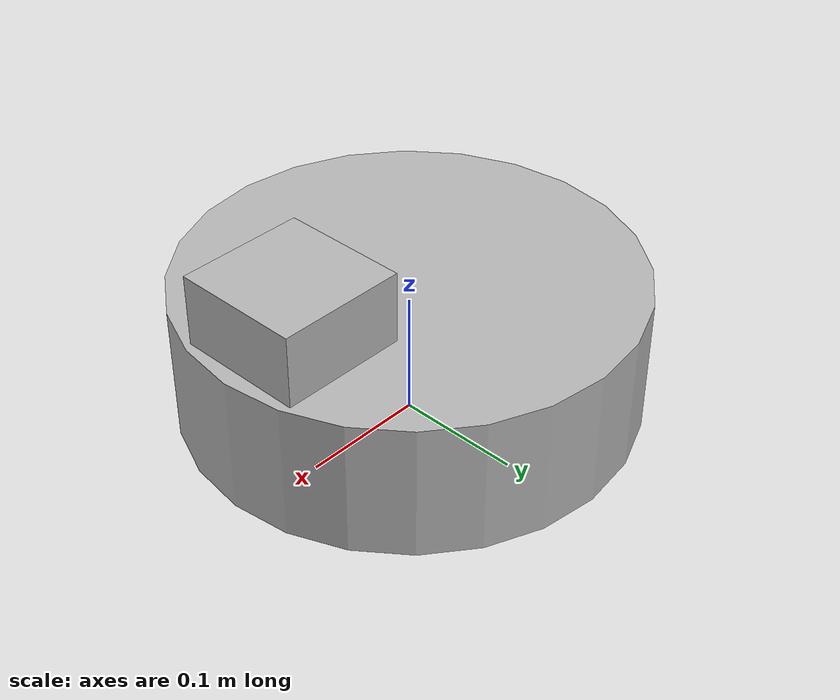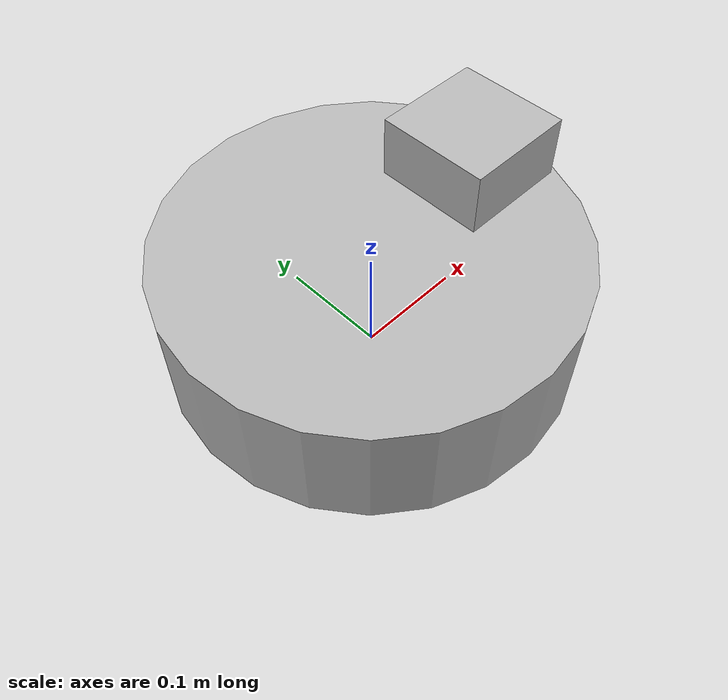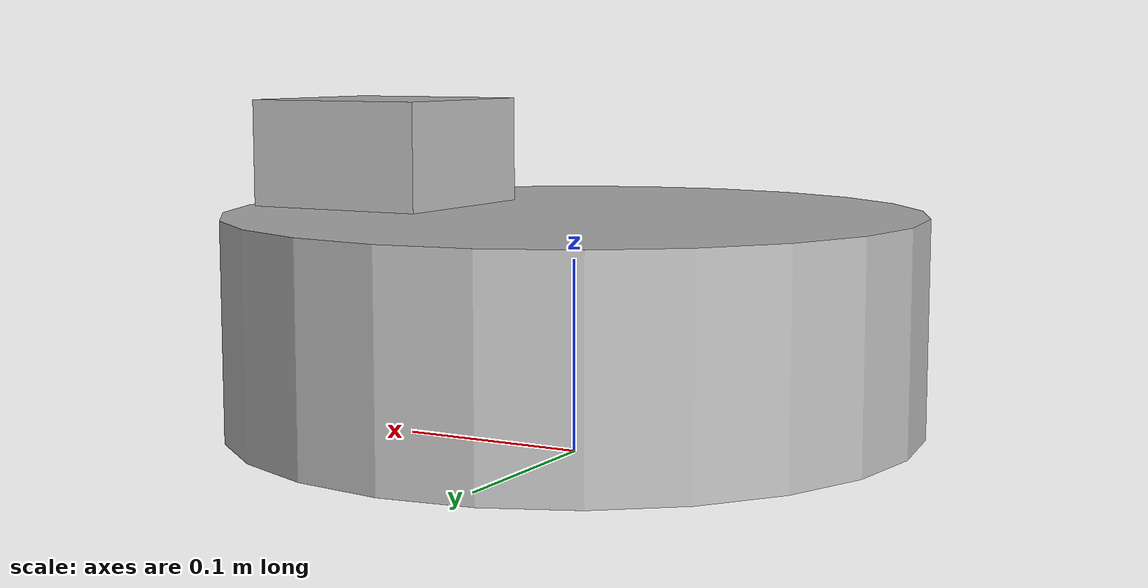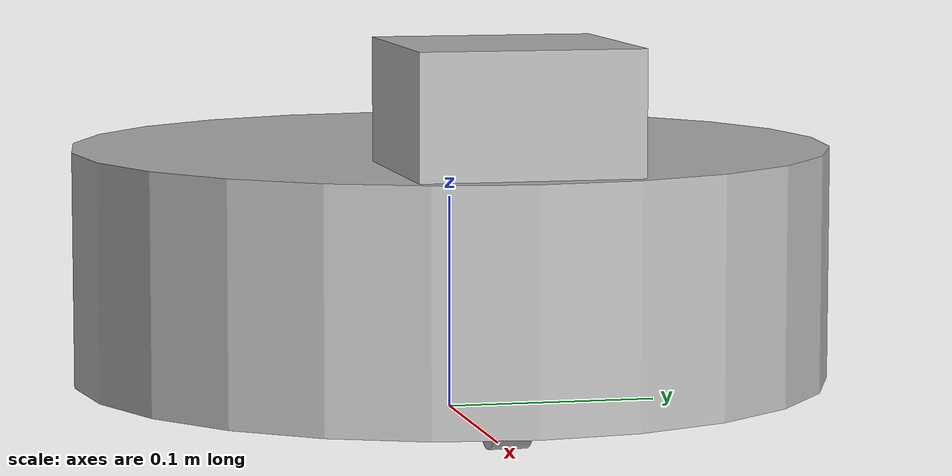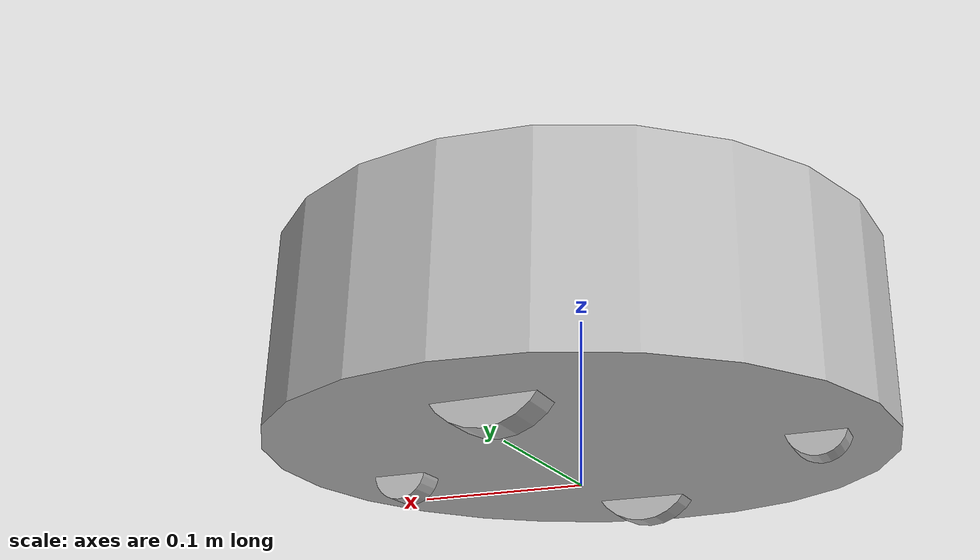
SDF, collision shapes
<sdf version='1.6'>
  <model name='kobuki_standalone'>
    <link name='base_footprint'>
      <pose frame=''>0 0 0 0 -0 0</pose>
      <inertial>
        <pose frame=''>0.009933 1.3e-05 0.010241 0 -0 0</pose>
        <mass>4.82131</mass>
        <inertia>
          <ixx>0.0424129</ixx>
          <ixy>-2.88798e-06</ixy>
          <ixz>2.94309e-06</ixz>
          <iyy>0.0426324</iyy>
          <iyz>-1.24986e-06</iyz>
          <izz>0.0762345</izz>
        </inertia>
      </inertial>
      <collision name='base_footprint_fixed_joint_lump__base_link_collision'>
        <pose frame=''>0 0 0.06969 0 -0 0</pose>
        <geometry>
          <cylinder>
            <length>0.10938</length>
            <radius>0.178</radius>
          </cylinder>
        </geometry>
        <surface>
          <contact>
            <ode/>
          </contact>
          <friction>
            <ode>
              <mu>0.3</mu>
              <mu2>0.3</mu2>
            </ode>
          </friction>
        </surface>
      </collision>
      <collision name='base_footprint_fixed_joint_lump__bumper_link_collision_1_collision_1'>
        <pose frame=''>0 0 0.06969 0 -0 0</pose>
        <geometry>
          <cylinder>
            <length>0.10938</length>
            <radius>0.178</radius>
          </cylinder>
        </geometry>
        <surface>
          <contact>
            <ode/>
          </contact>
          <friction>
            <ode/>
          </friction>
        </surface>
      </collision>
      <collision name='base_footprint_fixed_joint_lump__camera_link_collision_2'>
        <pose frame=''>0.067 0 0.1112 0 -0 0</pose>
        <geometry>
          <box>
            <size>0.012 0.132 0.02</size>
          </box>
        </geometry>
        <surface>
          <contact>
            <ode/>
          </contact>
          <friction>
            <ode/>
          </friction>
        </surface>
      </collision>
      <collision name='base_footprint_fixed_joint_lump__caster_back_link_collision_3'>
        <pose frame=''>-0.135 0 0.0192 -1.5708 0 0</pose>
        <geometry>
          <cylinder>
            <length>0.0176</length>
            <radius>0.017</radius>
          </cylinder>
        </geometry>
        <surface>
          <contact>
            <ode>
              <kp>1e+06</kp>
              <kd>100</kd>
              <max_vel>1</max_vel>
              <min_depth>0.001</min_depth>
            </ode>
          </contact>
          <friction>
            <ode>
              <mu>0</mu>
              <mu2>0</mu2>
            </ode>
          </friction>
        </surface>
      </collision>
      <collision name='base_footprint_fixed_joint_lump__caster_front_link_collision_4'>
        <pose frame=''>0.115 0 0.0172 -1.5708 0 0</pose>
        <geometry>
          <cylinder>
            <length>0.0176</length>
            <radius>0.017</radius>
          </cylinder>
        </geometry>
        <surface>
          <contact>
            <ode>
              <kp>1e+06</kp>
              <kd>100</kd>
              <max_vel>1</max_vel>
              <min_depth>0.001</min_depth>
            </ode>
          </contact>
          <friction>
            <ode>
              <mu>0</mu>
              <mu2>0</mu2>
            </ode>
          </friction>
        </surface>
      </collision>
      <collision name='base_footprint_fixed_joint_lump__base_laser_link_collision_5'>
        <pose frame=''>0.115 0 0.1302 0 -0 0</pose>
        <geometry>
          <box>
            <size>0.1 0.1 0.1</size>
          </box>
        </geometry>
        <surface>
          <contact>
            <ode/>
          </contact>
          <friction>
            <ode/>
          </friction>
        </surface>
      </collision>
      <visual name='base_footprint_fixed_joint_lump__base_link_visual'>
        <pose frame=''>0.001 0 0.06219 0 -0 0</pose>
        <geometry>
          <mesh>
            <scale>1 1 1</scale>
            <uri>model://rrt_exploration_tutorials/launch/includes/meshes/main_body.dae</uri>
          </mesh>
        </geometry>
        <material>
          <script>
            <uri>__default__</uri>
            <name>__default__</name>
          </script>
        </material>
      </visual>
      <visual name='base_footprint_fixed_joint_lump__bumper_link_visual_1'>
        <pose frame=''>0.001 0 0.06219 0 -0 0</pose>
        <geometry>
          <mesh>
            <scale>1 1 1</scale>
            <uri>model://rrt_exploration_tutorials/launch/includes/meshes/main_body.dae</uri>
          </mesh>
        </geometry>
        <material>
          <script>
            <uri>__default__</uri>
            <name>__default__</name>
          </script>
        </material>
      </visual>
      <visual name='base_footprint_fixed_joint_lump__camera_link_visual_2'>
        <pose frame=''>0.064 -0.065 0.1042 1.57 -0 1.57</pose>
        <geometry>
          <mesh>
            <scale>1 1 1</scale>
            <uri>model://rrt_exploration_tutorials/launch/includes/meshes/r200.dae</uri>
          </mesh>
        </geometry>
        <material>
          <script>
            <uri>__default__</uri>
            <name>__default__</name>
          </script>
        </material>
      </visual>
      <visual name='base_footprint_fixed_joint_lump__base_laser_link_visual_3'>
        <pose frame=''>0.115 0 0.1302 0 -0 0</pose>
        <geometry>
          <mesh>
            <scale>1 1 1</scale>
            <uri>model://rrt_exploration_tutorials/launch/includes/meshes/hokuyo.dae</uri>
          </mesh>
        </geometry>
        <material>
          <script>
            <uri>__default__</uri>
            <name>__default__</name>
          </script>
        </material>
      </visual>
      <velocity_decay/>
      <sensor name='bumpers' type='contact'>
        <always_on>1</always_on>
        <update_rate>50</update_rate>
        <visualize>1</visualize>
        <contact>
          <collision>base_footprint_collision_base_link_collision</collision>
          <topic>__default_topic__</topic>
        </contact>
        <pose frame=''>0 0 0.0102 0 -0 0</pose>
      </sensor>
      <velocity_decay/>
      <sensor name='bumpers' type='contact'>
        <always_on>1</always_on>
        <update_rate>50</update_rate>
        <visualize>1</visualize>
        <contact>
          <collision>base_footprint_fixed_joint_lump__bumper_link_collision_1</collision>
          <topic>__default_topic__</topic>
        </contact>
        <plugin name='gazebo_ros_bumper_controller' filename='libgazebo_ros_bumper.so'>
          <updateRate>50.0</updateRate>
          <bumperTopicName>bumper</bumperTopicName>
          <frameName>base_link</frameName>
        </plugin>
        <pose frame=''>0 0 0.0102 0 -0 0</pose>
      </sensor>
      <velocity_decay/>
      <sensor name='rgbcamera' type='camera'>
        <update_rate>30</update_rate>
        <camera name='head'>
          <horizontal_fov>1.4</horizontal_fov>
          <image>
            <width>642</width>
            <height>362</height>
            <format>R8G8B8</format>
          </image>
          <clip>
            <near>0.02</near>
            <far>300</far>
          </clip>
          <noise>
            <type>gaussian</type>
            <mean>0</mean>
            <stddev>0.007</stddev>
          </noise>
        </camera>
        <plugin name='camera_controller' filename='libgazebo_ros_camera.so'>
          <alwaysOn>true</alwaysOn>
          <updateRate>0.0</updateRate>
          <cameraName>rgbcamera</cameraName>
          <imageTopicName>image_raw</imageTopicName>
          <cameraInfoTopicName>camera_info</cameraInfoTopicName>
          <frameName>camera_link</frameName>
          <hackBaseline>0.07</hackBaseline>
          <distortionK1>0.0</distortionK1>
          <distortionK2>0.0</distortionK2>
          <distortionK3>0.0</distortionK3>
          <distortionT1>0.0</distortionT1>
          <distortionT2>0.0</distortionT2>
        </plugin>
        <pose frame=''>0.064 -0.065 0.1042 0 -0 0</pose>
      </sensor>
      <velocity_decay/>
      <velocity_decay/>
      <velocity_decay/>
      <sensor name='cliff_sensor_front' type='ray'>
        <always_on>1</always_on>
        <update_rate>50</update_rate>
        <visualize>1</visualize>
        <ray>
          <scan>
            <horizontal>
              <samples>50</samples>
              <resolution>1</resolution>
              <min_angle>-0.0436</min_angle>
              <max_angle>0.0436</max_angle>
            </horizontal>
          </scan>
          <range>
            <min>0.01</min>
            <max>0.15</max>
            <resolution>1</resolution>
          </range>
        </ray>
        <pose frame=''>0.156 0 0.0316 3.14159 1.57079 3.14159</pose>
      </sensor>
      <velocity_decay/>
      <sensor name='cliff_sensor_left' type='ray'>
        <always_on>1</always_on>
        <update_rate>50</update_rate>
        <visualize>1</visualize>
        <ray>
          <scan>
            <horizontal>
              <samples>50</samples>
              <resolution>1</resolution>
              <min_angle>-0.0436</min_angle>
              <max_angle>0.0436</max_angle>
            </horizontal>
          </scan>
          <range>
            <min>0.01</min>
            <max>0.15</max>
            <resolution>1</resolution>
          </range>
        </ray>
        <pose frame=''>0.08734 0.13601 0.0316 3.14159 1.57079 3.14159</pose>
      </sensor>
      <velocity_decay/>
      <sensor name='cliff_sensor_right' type='ray'>
        <always_on>1</always_on>
        <update_rate>50</update_rate>
        <visualize>1</visualize>
        <ray>
          <scan>
            <horizontal>
              <samples>50</samples>
              <resolution>1</resolution>
              <min_angle>-0.0436</min_angle>
              <max_angle>0.0436</max_angle>
            </horizontal>
          </scan>
          <range>
            <min>0.01</min>
            <max>0.15</max>
            <resolution>1</resolution>
          </range>
        </ray>
        <pose frame=''>0.085 -0.13601 0.0316 3.14159 1.57079 3.14159</pose>
      </sensor>
      <velocity_decay/>
      <sensor name='imu' type='imu'>
        <always_on>1</always_on>
        <update_rate>50</update_rate>
        <visualize>0</visualize>
        <imu>
          <angular_velocity>
            <x>
              <noise type='gaussian'>
                <mean>0</mean>
                <stddev>1.96e-06</stddev>
                <bias_mean>0</bias_mean>
                <bias_stddev>0</bias_stddev>
              </noise>
            </x>
            <y>
              <noise type='gaussian'>
                <mean>0</mean>
                <stddev>1.96e-06</stddev>
                <bias_mean>0</bias_mean>
                <bias_stddev>0</bias_stddev>
              </noise>
            </y>
            <z>
              <noise type='gaussian'>
                <mean>0</mean>
                <stddev>1.96e-06</stddev>
                <bias_mean>0</bias_mean>
                <bias_stddev>0</bias_stddev>
              </noise>
            </z>
          </angular_velocity>
          <linear_acceleration>
            <x>
              <noise type='gaussian'>
                <mean>0</mean>
                <stddev>0.017</stddev>
                <bias_mean>0.1</bias_mean>
                <bias_stddev>0.001</bias_stddev>
              </noise>
            </x>
            <y>
              <noise type='gaussian'>
                <mean>0</mean>
                <stddev>0.017</stddev>
                <bias_mean>0.1</bias_mean>
                <bias_stddev>0.001</bias_stddev>
              </noise>
            </y>
            <z>
              <noise type='gaussian'>
                <mean>0</mean>
                <stddev>0.017</stddev>
                <bias_mean>0.1</bias_mean>
                <bias_stddev>0.001</bias_stddev>
              </noise>
            </z>
          </linear_acceleration>
        </imu>
        <pose frame=''>0.056 0.062 0.0304 0 -0 0</pose>
      </sensor>
      <gravity>1</gravity>
      <velocity_decay/>
      <self_collide>0</self_collide>
      <sensor name='head_hokuyo_sensor' type='ray'>
        <visualize>1</visualize>
        <update_rate>40</update_rate>
        <ray>
          <scan>
            <horizontal>
              <samples>720</samples>
              <resolution>1</resolution>
              <min_angle>-1.5708</min_angle>
              <max_angle>1.5708</max_angle>
            </horizontal>
          </scan>
          <range>
            <min>0.1</min>
            <max>60</max>
            <resolution>0.01</resolution>
          </range>
          <noise>
            <type>gaussian</type>
            <mean>0</mean>
            <stddev>0.01</stddev>
          </noise>
        </ray>
        <plugin name='gazebo_ros_head_hokuyo_controller' filename='libgazebo_ros_laser.so'>
          <topicName>base_scan</topicName>
          <frameName>base_laser_link</frameName>
        </plugin>
        <pose frame=''>0.115 0 0.1302 0 -0 0</pose>
      </sensor>
    </link>
    <link name='wheel_left_link'>
      <pose frame=''>0 0.115 0.0352 -1.5708 0 0</pose>
      <inertial>
        <pose frame=''>0 0 0 0 -0 0</pose>
        <mass>0.01</mass>
        <inertia>
          <ixx>0.001</ixx>
          <ixy>0</ixy>
          <ixz>0</ixz>
          <iyy>0.001</iyy>
          <iyz>0</iyz>
          <izz>0.001</izz>
        </inertia>
      </inertial>
      <collision name='wheel_left_link_collision'>
        <pose frame=''>0 0 0 0 -0 0</pose>
        <geometry>
          <cylinder>
            <length>0.0206</length>
            <radius>0.0352</radius>
          </cylinder>
        </geometry>
        <surface>
          <contact>
            <ode>
              <kp>1e+06</kp>
              <kd>100</kd>
              <max_vel>1</max_vel>
              <min_depth>0.001</min_depth>
            </ode>
          </contact>
          <friction>
            <ode>
              <mu>1</mu>
              <mu2>1</mu2>
            </ode>
          </friction>
        </surface>
      </collision>
      <visual name='wheel_left_link_visual'>
        <pose frame=''>0 0 0 0 -0 0</pose>
        <geometry>
          <mesh>
            <scale>1 1 1</scale>
            <uri>model://rrt_exploration_tutorials/launch/includes/meshes/wheel.dae</uri>
          </mesh>
        </geometry>
        <material>
          <script>
            <uri>__default__</uri>
            <name>__default__</name>
          </script>
        </material>
      </visual>
      <gravity>1</gravity>
      <velocity_decay/>
      <self_collide>0</self_collide>
    </link>
    <joint name='wheel_left_joint' type='revolute'>
      <child>wheel_left_link</child>
      <parent>base_footprint</parent>
      <axis>
        <xyz>0 1 0</xyz>
        <limit>
          <lower>-1e+16</lower>
          <upper>1e+16</upper>
        </limit>
        <dynamics>
          <spring_reference>0</spring_reference>
          <spring_stiffness>0</spring_stiffness>
        </dynamics>
        <use_parent_model_frame>1</use_parent_model_frame>
      </axis>
    </joint>
    <link name='wheel_right_link'>
      <pose frame=''>0 -0.115 0.0352 -1.5708 0 0</pose>
      <inertial>
        <pose frame=''>0 0 0 0 -0 0</pose>
        <mass>0.01</mass>
        <inertia>
          <ixx>0.001</ixx>
          <ixy>0</ixy>
          <ixz>0</ixz>
          <iyy>0.001</iyy>
          <iyz>0</iyz>
          <izz>0.001</izz>
        </inertia>
      </inertial>
      <collision name='wheel_right_link_collision'>
        <pose frame=''>0 0 0 0 -0 0</pose>
        <geometry>
          <cylinder>
            <length>0.0206</length>
            <radius>0.035</radius>
          </cylinder>
        </geometry>
        <surface>
          <contact>
            <ode>
              <kp>1e+06</kp>
              <kd>100</kd>
              <max_vel>1</max_vel>
              <min_depth>0.001</min_depth>
            </ode>
          </contact>
          <friction>
            <ode>
              <mu>1</mu>
              <mu2>1</mu2>
            </ode>
          </friction>
        </surface>
      </collision>
      <visual name='wheel_right_link_visual'>
        <pose frame=''>0 0 0 0 -0 0</pose>
        <geometry>
          <mesh>
            <scale>1 1 1</scale>
            <uri>model://rrt_exploration_tutorials/launch/includes/meshes/wheel.dae</uri>
          </mesh>
        </geometry>
        <material>
          <script>
            <uri>__default__</uri>
            <name>__default__</name>
          </script>
        </material>
      </visual>
      <gravity>1</gravity>
      <velocity_decay/>
      <self_collide>0</self_collide>
    </link>
    <joint name='wheel_right_joint' type='revolute'>
      <child>wheel_right_link</child>
      <parent>base_footprint</parent>
      <axis>
        <xyz>0 1 0</xyz>
        <limit>
          <lower>-1e+16</lower>
          <upper>1e+16</upper>
        </limit>
        <dynamics>
          <spring_reference>0</spring_reference>
          <spring_stiffness>0</spring_stiffness>
        </dynamics>
        <use_parent_model_frame>1</use_parent_model_frame>
      </axis>
    </joint>
    <static>0</static>
    <plugin name='kobuki_controller' filename='libgazebo_ros_kobuki.so'>
      <publish_tf>1</publish_tf>
      <left_wheel_joint_name>wheel_left_joint</left_wheel_joint_name>
      <right_wheel_joint_name>wheel_right_joint</right_wheel_joint_name>
      <wheel_separation>.230</wheel_separation>
      <wheel_diameter>0.070</wheel_diameter>
      <torque>1.0</torque>
      <velocity_command_timeout>0.6</velocity_command_timeout>
      <cliff_sensor_left_name>cliff_sensor_left</cliff_sensor_left_name>
      <cliff_sensor_center_name>cliff_sensor_front</cliff_sensor_center_name>
      <cliff_sensor_right_name>cliff_sensor_right</cliff_sensor_right_name>
      <cliff_detection_threshold>0.04</cliff_detection_threshold>
      <bumper_name>bumpers</bumper_name>
      <imu_name>imu</imu_name>
    </plugin>
  </model>
</sdf>
